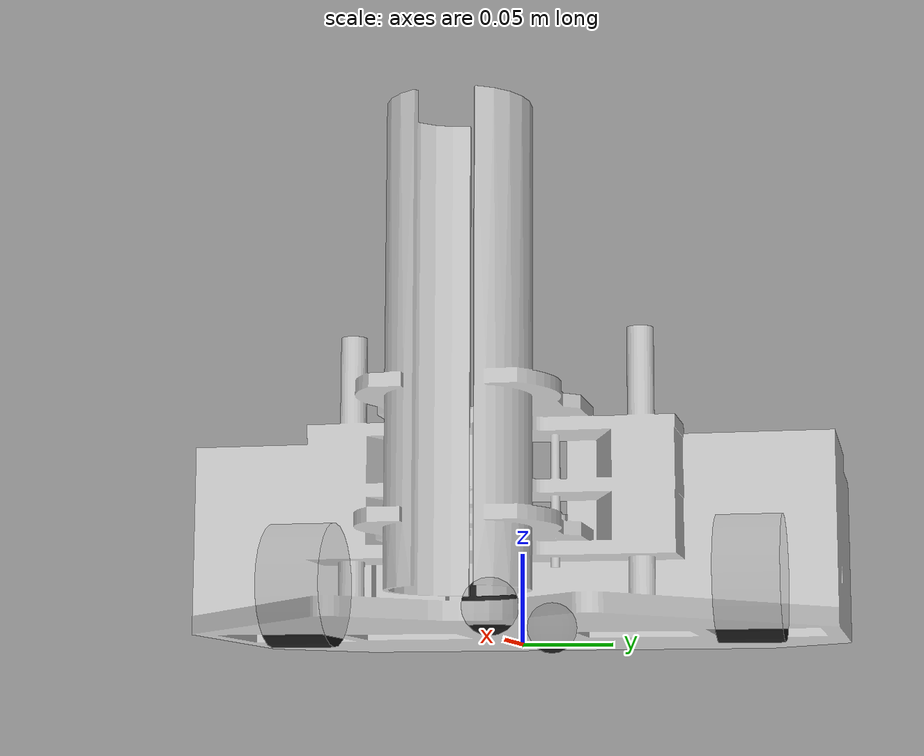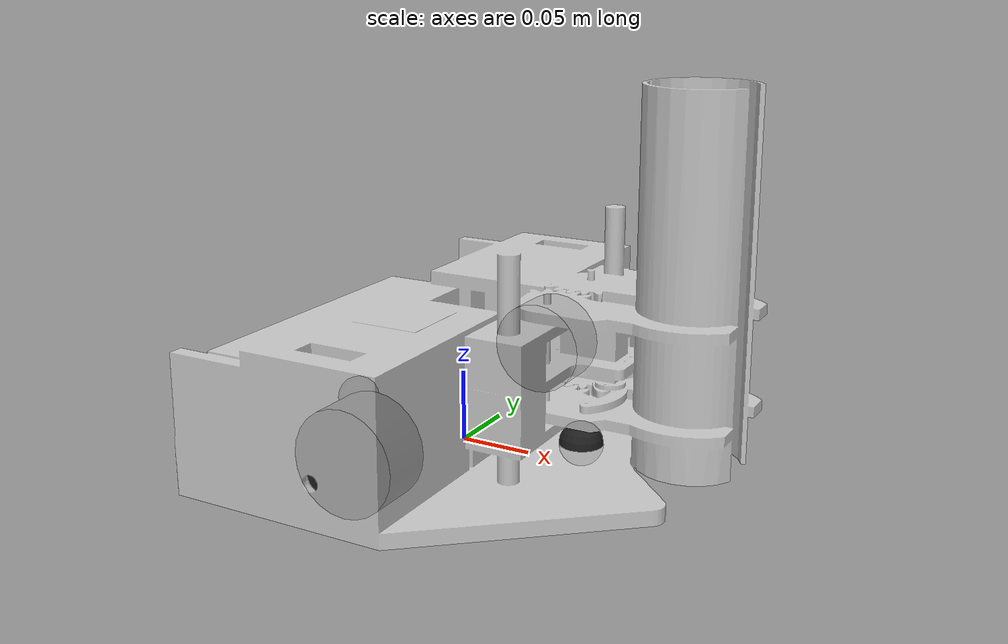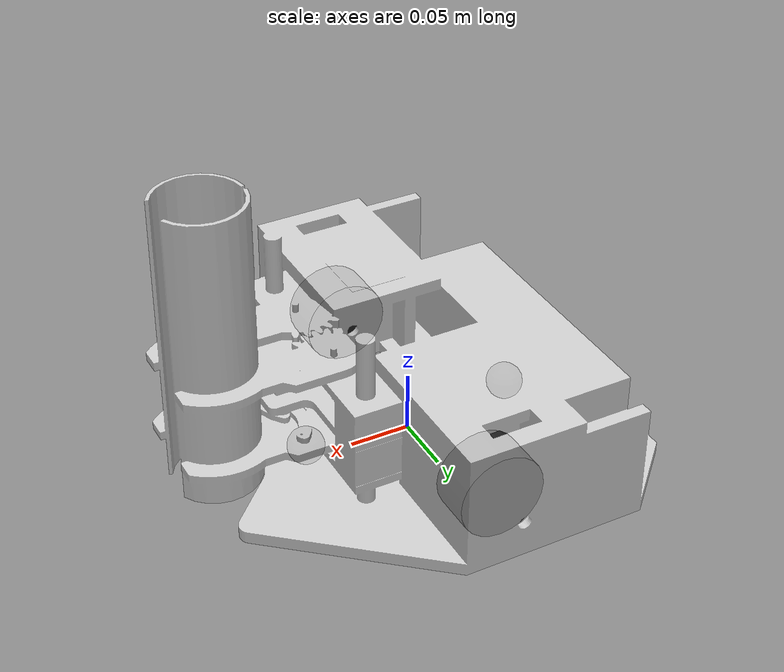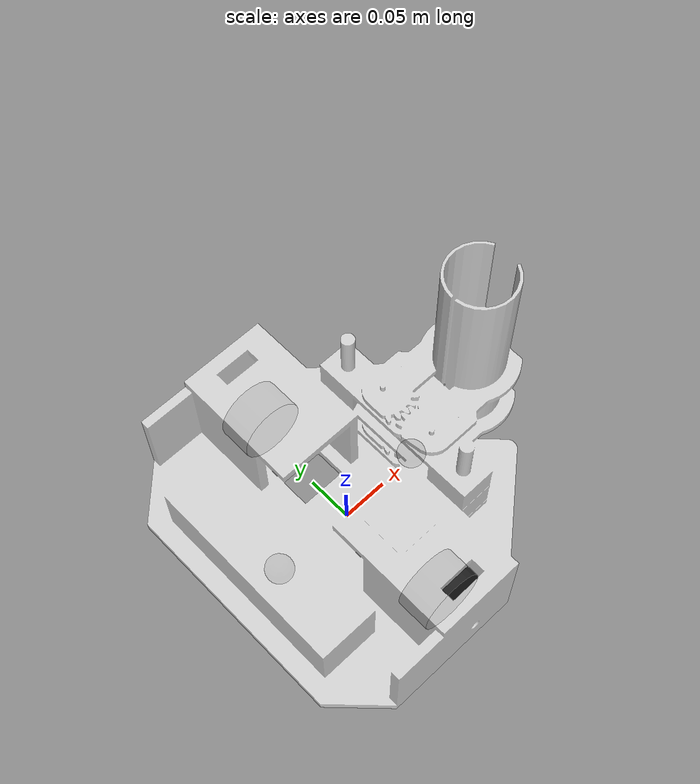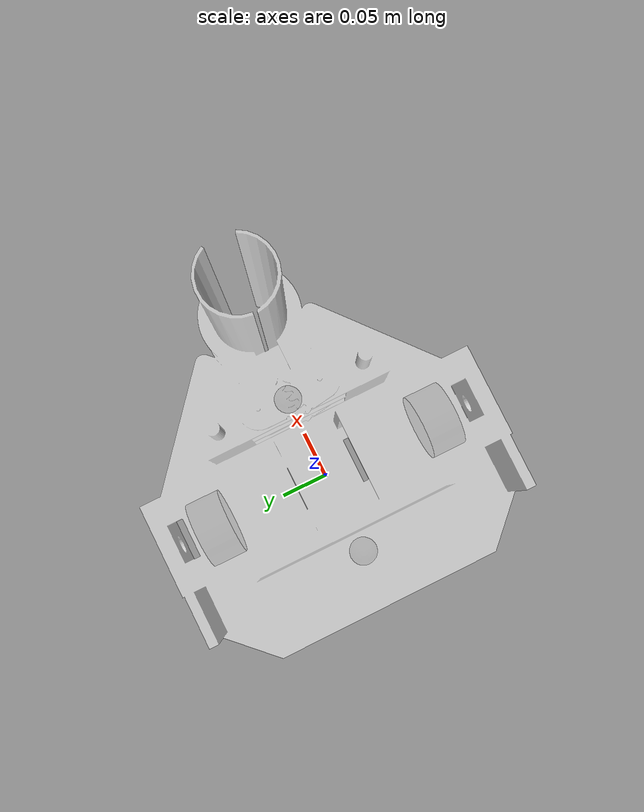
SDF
<?xml version="1.0"?>
<sdf version="1.5">
  <model name="Rosebot">
    <link name="chassis">
      <pose>0 0 .005 0 0 0</pose>
      <inertial>
        <mass>6.</mass>
        <inertia>
          <ixx>1</ixx>
          <iyy>1</iyy>
          <izz>0.8</izz>
          <ixy>0</ixy>
          <ixz>0</ixz>
          <iyz>0</iyz>
        </inertia>
      </inertial>
      <collision name="chassis_collision">
        <geometry>
	      <mesh>
		    <scale>0.001 0.001 0.001</scale>
		    <!-- decommenter la pose si utilisation de base.dae (+3cm) -->
		    <uri>model://rosebot/meshes/assemblage.dae</uri>
	      </mesh>
        </geometry>
      </collision>
      <visual name="chassis_visual">
  	 	<transparency>.2</transparency>
        <geometry>
	      <mesh>
		   <scale>0.001 0.001 0.001</scale>
		    <uri>model://rosebot/meshes/assemblage.dae</uri>
	      </mesh>
        </geometry>
        <material>
          <script>
            <uri>file://media/materials/scripts/gazebo.material</uri>
            <name>Gazebo/White</name>
          </script>
        </material>
      </visual>
    </link>
    <link name="roue_folle_avant">
	  <pose>0.09 0 .015 0 0 0</pose>
      <inertial>
        <mass>.13</mass>
        <inertia>
          <ixx>1</ixx>
          <iyy>1</iyy>
          <izz>1</izz>
          <ixy>0</ixy>
          <ixz>0</ixz>
          <iyz>0</iyz>
        </inertia>
      </inertial>
	  <collision name="castor_collision">
	    <geometry>
	      <sphere>
	        <radius>0.015</radius>
	      </sphere>
	    </geometry>
	    <surface>
	      <friction>
	        <ode>
	          <mu>0</mu>
	          <mu2>0</mu2>
	          <slip1>1.0</slip1>
	          <slip2>1.0</slip2>
	        </ode>
	      </friction>
	    </surface>
	  </collision>
	  <visual name="castor_visual">
	    <geometry>
	      <sphere>
	        <radius>0.015</radius>
	      </sphere>
	    </geometry>
	    <material>
	      <script>
	        <uri>file://media/materials/scripts/gazebo.material</uri>
	        <name>Gazebo/FlatBlack</name>
	      </script>
	    </material>
	  </visual>
    </link>
	<link name="roue_folle_arriere">
	  <pose>-0.09 0 .015 0 0 0</pose>
      <inertial>
        <mass>.13</mass>
        <inertia>
          <ixx>1</ixx>
          <iyy>1</iyy>
          <izz>1</izz>
          <ixy>0</ixy>
          <ixz>0</ixz>
          <iyz>0</iyz>
        </inertia>
      </inertial>
	  <collision name="castor_collision">
	    <geometry>
	      <sphere>
	        <radius>0.015</radius>
	      </sphere>
	    </geometry>
	    <surface>
	      <friction>
	        <ode>
	          <mu>0</mu>
	          <mu2>0</mu2>
	          <slip1>1.0</slip1>
	          <slip2>1.0</slip2>
	        </ode>
	      </friction>
	    </surface>
	  </collision>
	  <visual name="castor_visual">
	    <geometry>
	      <sphere>
	        <radius>0.015</radius>
	      </sphere>
	    </geometry>
	    <material>
	      <script>
	        <uri>file://media/materials/scripts/gazebo.material</uri>
	        <name>Gazebo/FlatBlack</name>
	      </script>
	    </material>
	  </visual>
    </link>
    <link name="right_wheel">
      <pose>0.0 -.126 0.035 0 1.5707 1.5707</pose>
      <inertial>
        <mass>.15</mass>
        <inertia>
          <ixx>0.0051</ixx>
          <iyy>0.0051</iyy>
          <izz>0.0090</izz>
          <ixy>0</ixy>
          <ixz>0</ixz>
          <iyz>0</iyz>
        </inertia>
      </inertial>
      <collision name="collision">
        <geometry>
          <cylinder>
            <radius>0.035</radius>
            <length>0.036</length>
          </cylinder>
        </geometry>
        <surface>
          <friction>
            <ode>
              <mu>100000.0</mu>
              <mu2>100000.0</mu2>
              <slip1>0.0</slip1>
              <slip2>0.0</slip2>
            </ode>
          </friction>
        </surface>
      </collision>
      <visual name="visual">
        <geometry>
          <cylinder>
            <radius>0.035</radius>
            <length>0.036</length>
          </cylinder>
        </geometry>
        <material>
          <script>
            <uri>file://media/materials/scripts/gazebo.material</uri>
            <name>Gazebo/FlatBlack</name>
          </script>
        </material>
      </visual>
    </link>
    <link name="left_wheel">
      <pose>0.0 .126 0.035 0 1.5707 1.5707</pose>
      <inertial>
        <mass>.15</mass>
        <inertia>
          <ixx>0.0051</ixx>
          <iyy>0.0051</iyy>
          <izz>0.0090</izz>
          <ixy>0</ixy>
          <ixz>0</ixz>
          <iyz>0</iyz>
        </inertia>
      </inertial>
      <collision name="collision">
        <geometry>
          <cylinder>
            <radius>0.035</radius>
            <length>0.036</length>
          </cylinder>
        </geometry>
        <surface>
          <friction>
            <ode>
              <mu>100000.0</mu>
              <mu2>100000.0</mu2>
              <slip1>0.0</slip1>
              <slip2>0.0</slip2>
            </ode>
          </friction>
        </surface>
      </collision>
      <visual name="visual">
        <geometry>
          <cylinder>
            <radius>0.035</radius>
            <length>0.036</length>
          </cylinder>
        </geometry>
        <material>
          <script>
            <uri>file://media/materials/scripts/gazebo.material</uri>
            <name>Gazebo/FlatBlack</name>
          </script>
        </material>
      </visual>
    </link>
    <joint name="attache_roue_folle_avant" type="revolute">
      <child>roue_folle_avant</child>
      <parent>chassis</parent>
      <axis>
        <xyz>0 1 0</xyz>
        <use_parent_model_frame>true</use_parent_model_frame>
	   <limit>
		<upper>0</upper>
		<lower>0</lower>
	   </limit>
      </axis>
    </joint>
    <joint name="attache_roue_folle_arriere" type="revolute">
      <child>roue_folle_arriere</child>
      <parent>chassis</parent>
      <axis>
        <xyz>0 1 0</xyz>
        <use_parent_model_frame>true</use_parent_model_frame>
	   <limit>
		<upper>0</upper>
		<lower>0</lower>
	   </limit>
      </axis>
    </joint>
    <joint name="left_wheel_hinge" type="revolute">
      <child>left_wheel</child>
      <parent>chassis</parent>
      <axis>
        <xyz>0 1 0</xyz>
        <use_parent_model_frame>true</use_parent_model_frame>
      </axis>
    </joint>
    <joint name="right_wheel_hinge" type="revolute">
      <child>right_wheel</child>
      <parent>chassis</parent>
      <axis>
        <xyz>0 1 0</xyz>
        <use_parent_model_frame>true</use_parent_model_frame>
      </axis>
    </joint>
	<plugin name="rosebot_gazebo" filename="libgazebo_ros_diff_drive.so">
		<leftJoint>left_wheel_hinge</leftJoint>
		<rightJoint>right_wheel_hinge</rightJoint>
		<robotBaseFrame>chassis</robotBaseFrame>
		<publishTF>true</publishTF>
		<publishWheelTF>false</publishWheelTF>
	</plugin>

  </model>
</sdf>
